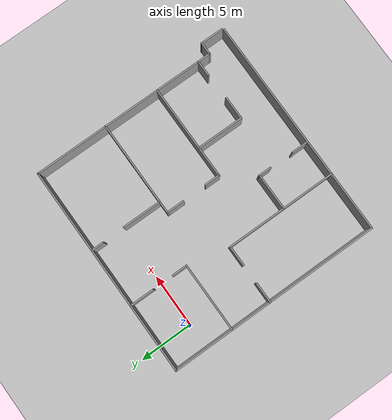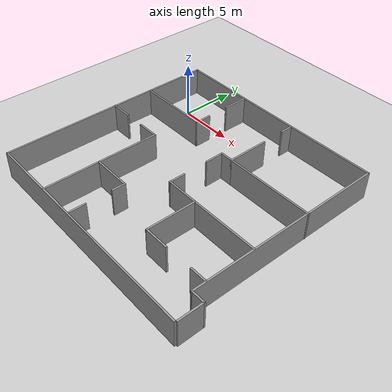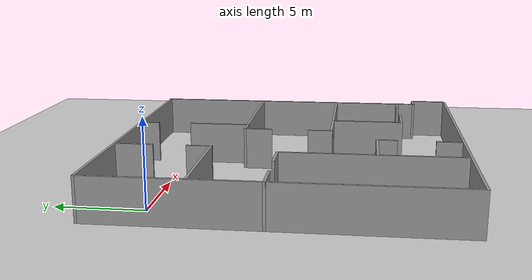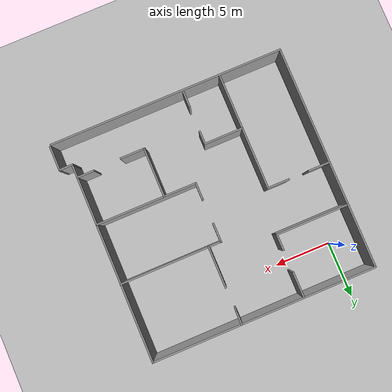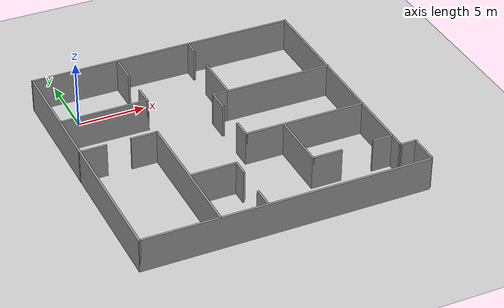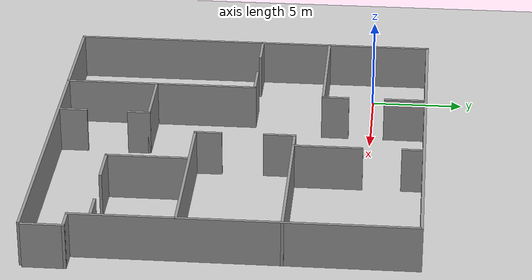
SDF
<sdf version="1.7">
 <world name="default">
  <light name="sun" type="directional">
   <pose>0 0 10 0 -0 0</pose>
   <diffuse>0.8 0.8 0.8 1</diffuse>
   <specular>0.2 0.2 0.2 1</specular>
   <attenuation>
    <range>1000</range>
    <constant>0.9</constant>
    <linear>0.01</linear>
    <quadratic>0.001</quadratic>
   </attenuation>
   <direction>-0.5 0.1 -0.9</direction>
   <spot><inner_angle>0</inner_angle><outer_angle>0</outer_angle><falloff>0</falloff></spot>
  </light>
  <model name="ground_plane">
   <static>1</static>
   <link name="link">
    <collision name="collision">
     <geometry><plane><normal>0 0 1</normal><size>100 100</size></plane></geometry>
     <surface>
      <contact><collide_bitmask>65535</collide_bitmask></contact>
      <friction><ode><mu>100</mu><mu2>50</mu2></ode></friction>
     </surface>
    </collision>
    <visual name="visual">
     <cast_shadows>0</cast_shadows>
     <geometry><plane><normal>0 0 1</normal><size>100 100</size></plane></geometry>
     <material>
      <script><uri>file://media/materials/scripts/gazebo.material</uri><name>Gazebo/Grey</name></script>
     </material>
    </visual>
   </link>
  </model>
  <gravity>0 0 -9.8</gravity>
  <magnetic_field>6e-06 2.3e-05 -4.2e-05</magnetic_field>
  <atmosphere type="adiabatic"/>
  <physics type="ode">
   <max_step_size>0.01</max_step_size>
   <real_time_factor>1</real_time_factor>
   <real_time_update_rate>0</real_time_update_rate>
  </physics>
  <scene><ambient>0.4 0.4 0.4 1</ambient><background>0.7 0.7 0.7 1</background><shadows>1</shadows></scene>
  <spherical_coordinates>
   <surface_model>EARTH_WGS84</surface_model>
   <latitude_deg>0</latitude_deg>
   <longitude_deg>0</longitude_deg>
   <elevation>0</elevation>
   <heading_deg>0</heading_deg>
  </spherical_coordinates>
  <model name="complex_maze">
   <pose>8.25556 -6.9436 0 0 -0 0</pose>
   <link name="Wall_0">
    <collision name="Wall_0_Collision">
     <geometry><box><size>20 0.15 2.5</size></box></geometry>
     <pose>0 0 1.25 0 -0 0</pose>
    </collision>
    <visual name="Wall_0_Visual">
     <pose>0 0 1.25 0 -0 0</pose>
     <geometry><box><size>20 0.15 2.5</size></box></geometry>
     <material>
      <script><uri>file://media/materials/scripts/gazebo.material</uri><name>Gazebo/Grey</name></script>
      <ambient>1 1 1 1</ambient>
     </material>
     <meta><layer>0</layer></meta>
    </visual>
    <pose>-10.4862 -0.000947 0 0 -0 -1.5708</pose>
   </link>
   <link name="Wall_1">
    <collision name="Wall_1_Collision">
     <geometry><box><size>21 0.15 2.5</size></box></geometry>
     <pose>0 0 1.25 0 -0 0</pose>
    </collision>
    <visual name="Wall_1_Visual">
     <pose>0 0 1.25 0 -0 0</pose>
     <geometry><box><size>21 0.15 2.5</size></box></geometry>
     <material>
      <script><uri>file://media/materials/scripts/gazebo.material</uri><name>Gazebo/Grey</name></script>
      <ambient>1 1 1 1</ambient>
     </material>
     <meta><layer>0</layer></meta>
    </visual>
    <pose>-0.061168 -9.92595 0 0 -0 0</pose>
   </link>
   <link name="Wall_10">
    <collision name="Wall_10_Collision">
     <geometry><box><size>1.5 0.15 2.5</size></box></geometry>
     <pose>0 0 1.25 0 -0 0</pose>
    </collision>
    <visual name="Wall_10_Visual">
     <pose>0 0 1.25 0 -0 0</pose>
     <geometry><box><size>1.5 0.15 2.5</size></box></geometry>
     <material>
      <script><uri>file://media/materials/scripts/gazebo.material</uri><name>Gazebo/Grey</name></script>
      <ambient>1 1 1 1</ambient>
     </material>
     <meta><layer>0</layer></meta>
    </visual>
    <pose>-4.05692 4.9909 0 0 -0 1.5708</pose>
   </link>
   <link name="Wall_12">
    <collision name="Wall_12_Collision">
     <geometry><box><size>2.25 0.15 2.5</size></box></geometry>
     <pose>0 0 1.25 0 -0 0</pose>
    </collision>
    <visual name="Wall_12_Visual">
     <pose>0 0 1.25 0 -0 0</pose>
     <geometry><box><size>2.25 0.15 2.5</size></box></geometry>
     <material>
      <script><uri>file://media/materials/scripts/gazebo.material</uri><name>Gazebo/Grey</name></script>
      <ambient>1 1 1 1</ambient>
     </material>
     <meta><layer>0</layer></meta>
    </visual>
    <pose>-4.0645 8.77688 0 0 -0 1.5708</pose>
   </link>
   <link name="Wall_14">
    <collision name="Wall_14_Collision">
     <geometry><box><size>2 0.15 2.5</size></box></geometry>
     <pose>0 0 1.25 0 -0 0</pose>
    </collision>
    <visual name="Wall_14_Visual">
     <pose>0 0 1.25 0 -0 0</pose>
     <geometry><box><size>2 0.15 2.5</size></box></geometry>
     <material>
      <script><uri>file://media/materials/scripts/gazebo.material</uri><name>Gazebo/Grey</name></script>
      <ambient>1 1 1 1</ambient>
     </material>
     <meta><layer>0</layer></meta>
    </visual>
    <pose>-9.57474 0.479505 0 0 -0 0</pose>
   </link>
   <link name="Wall_16">
    <collision name="Wall_16_Collision">
     <geometry><box><size>2 0.15 2.5</size></box></geometry>
     <pose>0 0 1.25 0 -0 0</pose>
    </collision>
    <visual name="Wall_16_Visual">
     <pose>0 0 1.25 0 -0 0</pose>
     <geometry><box><size>2 0.15 2.5</size></box></geometry>
     <material>
      <script><uri>file://media/materials/scripts/gazebo.material</uri><name>Gazebo/Grey</name></script>
      <ambient>1 1 1 1</ambient>
     </material>
     <meta><layer>0</layer></meta>
    </visual>
    <pose>-5.83864 0.479505 0 0 -0 0</pose>
   </link>
   <link name="Wall_17">
    <collision name="Wall_17_Collision">
     <geometry><box><size>10.5 0.15 2.5</size></box></geometry>
     <pose>0 0 1.25 0 -0 0</pose>
    </collision>
    <visual name="Wall_17_Visual">
     <pose>0 0 1.25 0 -0 0</pose>
     <geometry><box><size>10.5 0.15 2.5</size></box></geometry>
     <material>
      <script><uri>file://media/materials/scripts/gazebo.material</uri><name>Gazebo/Grey</name></script>
      <ambient>1 1 1 1</ambient>
     </material>
     <meta><layer>0</layer></meta>
    </visual>
    <pose>-4.91364 -4.6955 0 0 -0 -1.5708</pose>
   </link>
   <link name="Wall_20">
    <collision name="Wall_20_Collision">
     <geometry><box><size>1.25 0.15 2.5</size></box></geometry>
     <pose>0 0 1.25 0 -0 0</pose>
    </collision>
    <visual name="Wall_20_Visual">
     <pose>0 0 1.25 0 -0 0</pose>
     <geometry><box><size>1.25 0.15 2.5</size></box></geometry>
     <material>
      <script><uri>file://media/materials/scripts/gazebo.material</uri><name>Gazebo/Grey</name></script>
      <ambient>1 1 1 1</ambient>
     </material>
     <meta><layer>0</layer></meta>
    </visual>
    <pose>1.49992 9.37595 0 0 -0 -1.5708</pose>
   </link>
   <link name="Wall_22">
    <collision name="Wall_22_Collision">
     <geometry><box><size>3.75 0.15 2.5</size></box></geometry>
     <pose>0 0 1.25 0 -0 0</pose>
    </collision>
    <visual name="Wall_22_Visual">
     <pose>0 0 1.25 0 -0 0</pose>
     <geometry><box><size>3.75 0.15 2.5</size></box></geometry>
     <material>
      <script><uri>file://media/materials/scripts/gazebo.material</uri><name>Gazebo/Grey</name></script>
      <ambient>1 1 1 1</ambient>
     </material>
     <meta><layer>0</layer></meta>
    </visual>
    <pose>1.5355 4.85264 0 0 -0 -1.5708</pose>
   </link>
   <link name="Wall_23">
    <collision name="Wall_23_Collision">
     <geometry><box><size>8 0.15 2.5</size></box></geometry>
     <pose>0 0 1.25 0 -0 0</pose>
    </collision>
    <visual name="Wall_23_Visual">
     <pose>0 0 1.25 0 -0 0</pose>
     <geometry><box><size>8 0.15 2.5</size></box></geometry>
     <material>
      <script><uri>file://media/materials/scripts/gazebo.material</uri><name>Gazebo/Grey</name></script>
      <ambient>1 1 1 1</ambient>
     </material>
     <meta><layer>0</layer></meta>
    </visual>
    <pose>5.4605 3.05264 0 0 -0 0</pose>
   </link>
   <link name="Wall_25">
    <collision name="Wall_25_Collision">
     <geometry><box><size>1.25 0.15 2.5</size></box></geometry>
     <pose>0 0 1.25 0 -0 0</pose>
    </collision>
    <visual name="Wall_25_Visual">
     <pose>0 0 1.25 0 -0 0</pose>
     <geometry><box><size>1.25 0.15 2.5</size></box></geometry>
     <material>
      <script><uri>file://media/materials/scripts/gazebo.material</uri><name>Gazebo/Grey</name></script>
      <ambient>1 1 1 1</ambient>
     </material>
     <meta><layer>0</layer></meta>
    </visual>
    <pose>0.9855 3.05264 0 0 -0 3.14159</pose>
   </link>
   <link name="Wall_26">
    <collision name="Wall_26_Collision">
     <geometry><box><size>1.75 0.15 2.5</size></box></geometry>
     <pose>0 0 1.25 0 -0 0</pose>
    </collision>
    <visual name="Wall_26_Visual">
     <pose>0 0 1.25 0 -0 0</pose>
     <geometry><box><size>1.75 0.15 2.5</size></box></geometry>
     <material>
      <script><uri>file://media/materials/scripts/gazebo.material</uri><name>Gazebo/Grey</name></script>
      <ambient>1 1 1 1</ambient>
     </material>
     <meta><layer>0</layer></meta>
    </visual>
    <pose>0.435499 2.25264 0 0 -0 -1.5708</pose>
   </link>
   <link name="Wall_28">
    <collision name="Wall_28_Collision">
     <geometry><box><size>1.5 0.15 2.5</size></box></geometry>
     <pose>0 0 1.25 0 -0 0</pose>
    </collision>
    <visual name="Wall_28_Visual">
     <pose>0 0 1.25 0 -0 0</pose>
     <geometry><box><size>1.5 0.15 2.5</size></box></geometry>
     <material>
      <script><uri>file://media/materials/scripts/gazebo.material</uri><name>Gazebo/Grey</name></script>
      <ambient>1 1 1 1</ambient>
     </material>
     <meta><layer>0</layer></meta>
    </visual>
    <pose>0.468117 -1.5652 0 0 -0 -1.5708</pose>
   </link>
   <link name="Wall_29">
    <collision name="Wall_29_Collision">
     <geometry><box><size>9 0.15 2.5</size></box></geometry>
     <pose>0 0 1.25 0 -0 0</pose>
    </collision>
    <visual name="Wall_29_Visual">
     <pose>0 0 1.25 0 -0 0</pose>
     <geometry><box><size>9 0.15 2.5</size></box></geometry>
     <material>
      <script><uri>file://media/materials/scripts/gazebo.material</uri><name>Gazebo/Grey</name></script>
      <ambient>1 1 1 1</ambient>
     </material>
     <meta><layer>0</layer></meta>
    </visual>
    <pose>4.89312 -2.2402 0 0 -0 0</pose>
   </link>
   <link name="Wall_3">
    <collision name="Wall_3_Collision">
     <geometry><box><size>20 0.15 2.5</size></box></geometry>
     <pose>0 0 1.25 0 -0 0</pose>
    </collision>
    <visual name="Wall_3_Visual">
     <pose>0 0 1.25 0 -0 0</pose>
     <geometry><box><size>20 0.15 2.5</size></box></geometry>
     <material>
      <script><uri>file://media/materials/scripts/gazebo.material</uri><name>Gazebo/Grey</name></script>
      <ambient>1 1 1 1</ambient>
     </material>
     <meta><layer>0</layer></meta>
    </visual>
    <pose>-0.561168 9.92405 0 0 -0 0</pose>
   </link>
   <link name="Wall_31">
    <collision name="Wall_31_Collision">
     <geometry><box><size>3.5 0.15 2.5</size></box></geometry>
     <pose>0 0 1.25 0 -0 0</pose>
    </collision>
    <visual name="Wall_31_Visual">
     <pose>0 0 1.25 0 -0 0</pose>
     <geometry><box><size>3.5 0.15 2.5</size></box></geometry>
     <material>
      <script><uri>file://media/materials/scripts/gazebo.material</uri><name>Gazebo/Grey</name></script>
      <ambient>1 1 1 1</ambient>
     </material>
     <meta><layer>0</layer></meta>
    </visual>
    <pose>-3.1938 -4.98183 0 0 -0 0</pose>
   </link>
   <link name="Wall_32">
    <collision name="Wall_32_Collision">
     <geometry><box><size>1.25 0.15 2.5</size></box></geometry>
     <pose>0 0 1.25 0 -0 0</pose>
    </collision>
    <visual name="Wall_32_Visual">
     <pose>0 0 1.25 0 -0 0</pose>
     <geometry><box><size>1.25 0.15 2.5</size></box></geometry>
     <material>
      <script><uri>file://media/materials/scripts/gazebo.material</uri><name>Gazebo/Grey</name></script>
      <ambient>1 1 1 1</ambient>
     </material>
     <meta><layer>0</layer></meta>
    </visual>
    <pose>-1.5188 -5.53183 0 0 -0 -1.5708</pose>
   </link>
   <link name="Wall_34">
    <collision name="Wall_34_Collision">
     <geometry><box><size>1.5 0.15 2.5</size></box></geometry>
     <pose>0 0 1.25 0 -0 0</pose>
    </collision>
    <visual name="Wall_34_Visual">
     <pose>0 0 1.25 0 -0 0</pose>
     <geometry><box><size>1.5 0.15 2.5</size></box></geometry>
     <material>
      <script><uri>file://media/materials/scripts/gazebo.material</uri><name>Gazebo/Grey</name></script>
      <ambient>1 1 1 1</ambient>
     </material>
     <meta><layer>0</layer></meta>
    </visual>
    <pose>-1.55991 -9.10804 0 0 -0 -1.5708</pose>
   </link>
   <link name="Wall_36">
    <collision name="Wall_36_Collision">
     <geometry><box><size>4.5 0.15 2.5</size></box></geometry>
     <pose>0 0 1.25 0 -0 0</pose>
    </collision>
    <visual name="Wall_36_Visual">
     <pose>0 0 1.25 0 -0 0</pose>
     <geometry><box><size>4.5 0.15 2.5</size></box></geometry>
     <material>
      <script><uri>file://media/materials/scripts/gazebo.material</uri><name>Gazebo/Grey</name></script>
      <ambient>1 1 1 1</ambient>
     </material>
     <meta><layer>0</layer></meta>
    </visual>
    <pose>3.31447 -4.41722 0 0 -0 -1.5708</pose>
   </link>
   <link name="Wall_38">
    <collision name="Wall_38_Collision">
     <geometry><box><size>2.25 0.15 2.5</size></box></geometry>
     <pose>0 0 1.25 0 -0 0</pose>
    </collision>
    <visual name="Wall_38_Visual">
     <pose>0 0 1.25 0 -0 0</pose>
     <geometry><box><size>2.25 0.15 2.5</size></box></geometry>
     <material>
      <script><uri>file://media/materials/scripts/gazebo.material</uri><name>Gazebo/Grey</name></script>
      <ambient>1 1 1 1</ambient>
     </material>
     <meta><layer>0</layer></meta>
    </visual>
    <pose>4.36447 -6.59222 0 0 -0 0</pose>
   </link>
   <link name="Wall_40">
    <collision name="Wall_40_Collision">
     <geometry><box><size>1.5 0.15 2.5</size></box></geometry>
     <pose>0 0 1.25 0 -0 0</pose>
    </collision>
    <visual name="Wall_40_Visual">
     <pose>0 0 1.25 0 -0 0</pose>
     <geometry><box><size>1.5 0.15 2.5</size></box></geometry>
     <material>
      <script><uri>file://media/materials/scripts/gazebo.material</uri><name>Gazebo/Grey</name></script>
      <ambient>1 1 1 1</ambient>
     </material>
     <meta><layer>0</layer></meta>
    </visual>
    <pose>8.6148 -6.51175 0 0 -0 0</pose>
   </link>
   <link name="Wall_5">
    <collision name="Wall_5_Collision">
     <geometry><box><size>17.75 0.15 2.5</size></box></geometry>
     <pose>0 0 1.25 0 -0 0</pose>
    </collision>
    <visual name="Wall_5_Visual">
     <pose>0 0 1.25 0 -0 0</pose>
     <geometry><box><size>17.75 0.15 2.5</size></box></geometry>
     <material>
      <script><uri>file://media/materials/scripts/gazebo.material</uri><name>Gazebo/Grey</name></script>
      <ambient>1 1 1 1</ambient>
     </material>
     <meta><layer>0</layer></meta>
    </visual>
    <pose>9.36383 1.12405 0 0 -0 -1.5708</pose>
   </link>
   <link name="Wall_6">
    <collision name="Wall_6_Collision">
     <geometry><box><size>1.28611 0.15 2.5</size></box></geometry>
     <pose>0 0 1.25 0 -0 0</pose>
    </collision>
    <visual name="Wall_6_Visual">
     <pose>0 0 1.25 0 -0 0</pose>
     <geometry><box><size>1.28611 0.15 2.5</size></box></geometry>
     <material>
      <script><uri>file://media/materials/scripts/gazebo.material</uri><name>Gazebo/Grey</name></script>
      <ambient>1 1 1 1</ambient>
     </material>
     <meta><layer>0</layer></meta>
    </visual>
    <pose>9.93162 -7.67547 0 0 -0 0.000831</pose>
   </link>
   <link name="Wall_7">
    <collision name="Wall_7_Collision">
     <geometry><box><size>2.25 0.15 2.5</size></box></geometry>
     <pose>0 0 1.25 0 -0 0</pose>
    </collision>
    <visual name="Wall_7_Visual">
     <pose>0 0 1.25 0 -0 0</pose>
     <geometry><box><size>2.25 0.15 2.5</size></box></geometry>
     <material>
      <script><uri>file://media/materials/scripts/gazebo.material</uri><name>Gazebo/Grey</name></script>
      <ambient>1 1 1 1</ambient>
     </material>
     <meta><layer>0</layer></meta>
    </visual>
    <pose>10.4994 -8.725 0 0 -0 -1.5708</pose>
   </link>
   <link name="Wall_9">
    <collision name="Wall_9_Collision">
     <geometry><box><size>6.5 0.15 2.5</size></box></geometry>
     <pose>0 0 1.25 0 -0 0</pose>
    </collision>
    <visual name="Wall_9_Visual">
     <pose>0 0 1.25 0 -0 0</pose>
     <geometry><box><size>6.5 0.15 2.5</size></box></geometry>
     <material>
      <script><uri>file://media/materials/scripts/gazebo.material</uri><name>Gazebo/Grey</name></script>
      <ambient>1 1 1 1</ambient>
     </material>
     <meta><layer>0</layer></meta>
    </visual>
    <pose>-7.23192 4.3159 0 0 -0 0</pose>
   </link>
   <static>1</static>
  </model>
 </world>
</sdf>
